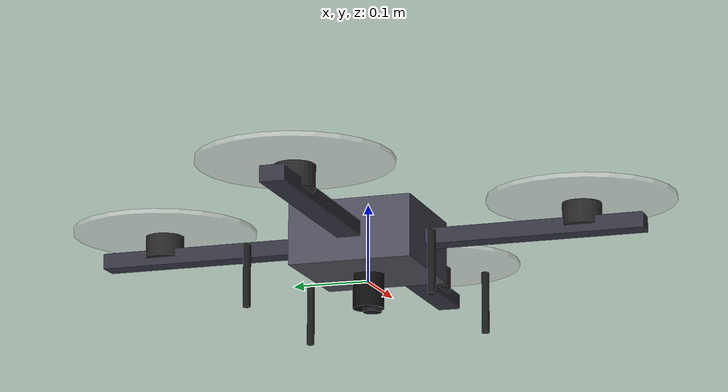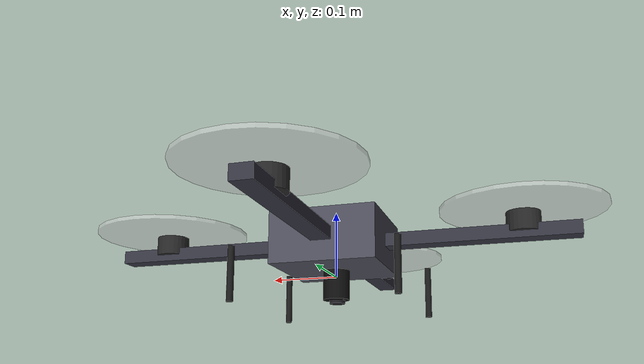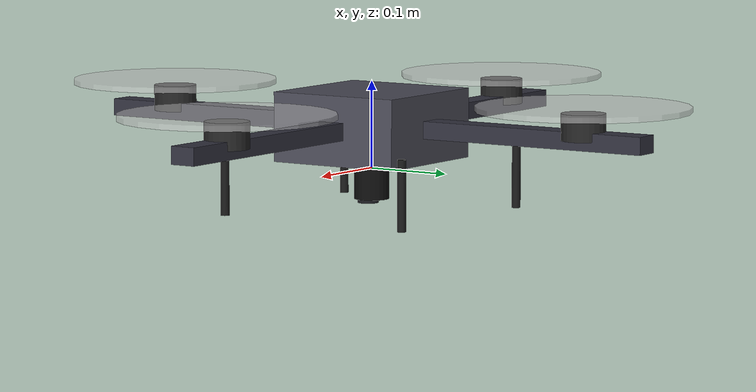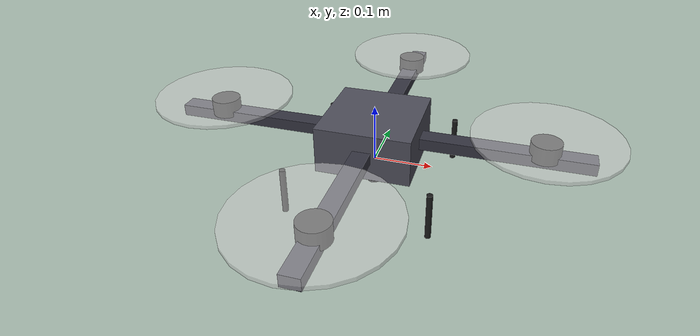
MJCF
<mujoco model="quadrotor_drone">
  <compiler angle="radian"/>

  <worldbody>
    <!-- Drone body: cross-shaped frame -->
    <body name="drone_base" pos="0 0 0.05">
      <!-- Central hub -->
      <geom name="hub" type="box" size="0.08 0.08 0.04" pos="0 0 0" rgba="0.3 0.3 0.35 1"/>

      <!-- Four arms -->
      <geom name="arm_front" type="box" size="0.18 0.015 0.01" pos="0.18 0 0" rgba="0.2 0.2 0.25 1"/>
      <geom name="arm_back" type="box" size="0.18 0.015 0.01" pos="-0.18 0 0" rgba="0.2 0.2 0.25 1"/>
      <geom name="arm_left" type="box" size="0.015 0.18 0.01" pos="0 0.18 0" rgba="0.2 0.2 0.25 1"/>
      <geom name="arm_right" type="box" size="0.015 0.18 0.01" pos="0 -0.18 0" rgba="0.2 0.2 0.25 1"/>

      <!-- Four motors -->
      <geom name="motor_front" type="cylinder" size="0.025 0.015" pos="0.28 0 0.015" rgba="0.15 0.15 0.15 1"/>
      <geom name="motor_back" type="cylinder" size="0.025 0.015" pos="-0.28 0 0.015" rgba="0.15 0.15 0.15 1"/>
      <geom name="motor_left" type="cylinder" size="0.025 0.015" pos="0 0.28 0.015" rgba="0.15 0.15 0.15 1"/>
      <geom name="motor_right" type="cylinder" size="0.025 0.015" pos="0 -0.28 0.015" rgba="0.15 0.15 0.15 1"/>

      <!-- Four propellers (flat discs, shown spinning in frontend) -->
      <geom name="prop_front" type="cylinder" size="0.12 0.003" pos="0.28 0 0.035" rgba="0.85 0.85 0.85 0.5"/>
      <geom name="prop_back" type="cylinder" size="0.12 0.003" pos="-0.28 0 0.035" rgba="0.85 0.85 0.85 0.5"/>
      <geom name="prop_left" type="cylinder" size="0.12 0.003" pos="0 0.28 0.035" rgba="0.85 0.85 0.85 0.5"/>
      <geom name="prop_right" type="cylinder" size="0.12 0.003" pos="0 -0.28 0.035" rgba="0.85 0.85 0.85 0.5"/>

      <!-- Landing gear -->
      <geom name="leg_fl" type="cylinder" size="0.005 0.04" pos="0.12 0.12 -0.06" rgba="0.1 0.1 0.1 1"/>
      <geom name="leg_fr" type="cylinder" size="0.005 0.04" pos="0.12 -0.12 -0.06" rgba="0.1 0.1 0.1 1"/>
      <geom name="leg_bl" type="cylinder" size="0.005 0.04" pos="-0.12 0.12 -0.06" rgba="0.1 0.1 0.1 1"/>
      <geom name="leg_br" type="cylinder" size="0.005 0.04" pos="-0.12 -0.12 -0.06" rgba="0.1 0.1 0.1 1"/>

      <!-- Camera/gimbal underneath -->
      <geom name="camera_body" type="cylinder" size="0.02 0.025" pos="0 0 -0.06" rgba="0.05 0.05 0.05 1"/>
      <geom name="camera_lens" type="cylinder" size="0.012 0.01" pos="0 -0.005 -0.08" rgba="0.1 0.1 0.12 1"/>

      <!-- Free joint for 6-DOF flight -->
      <joint name="drone_free" type="free"/>
    </body>
  </worldbody>
</mujoco>
